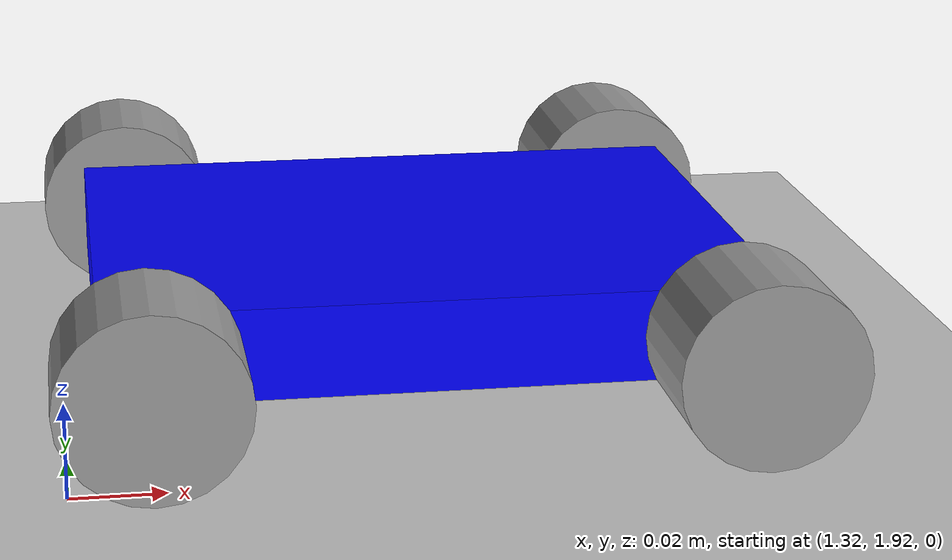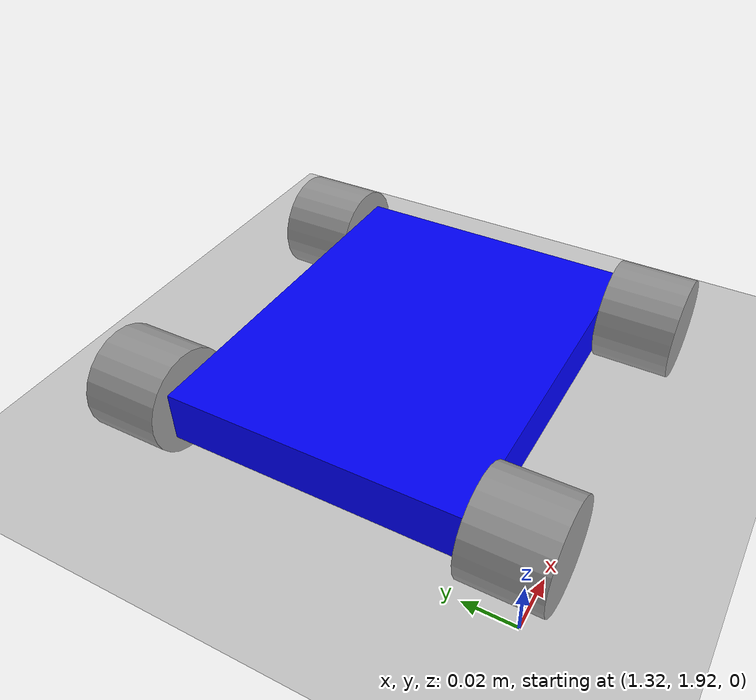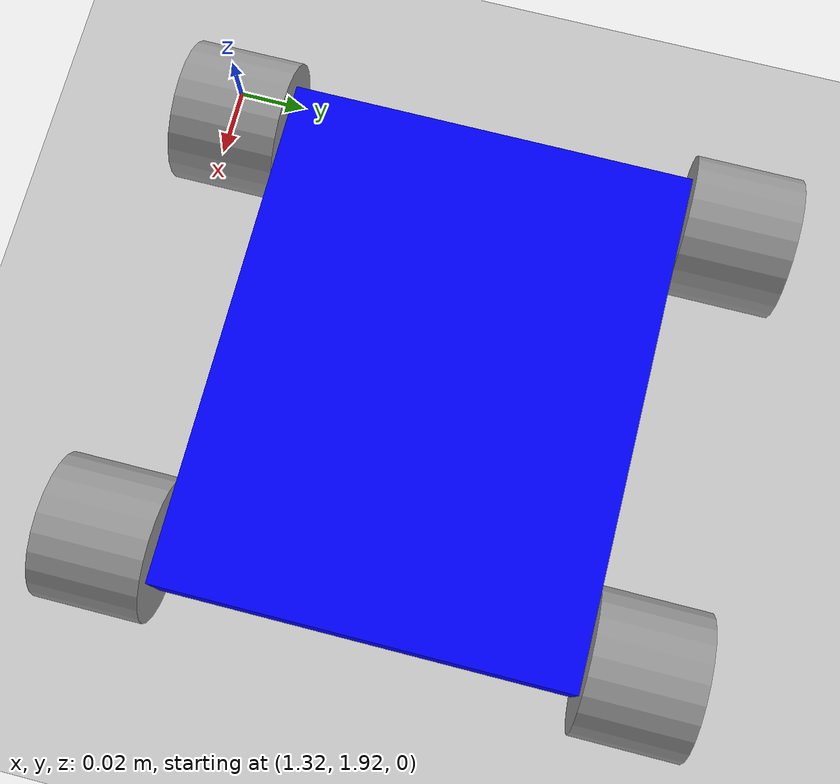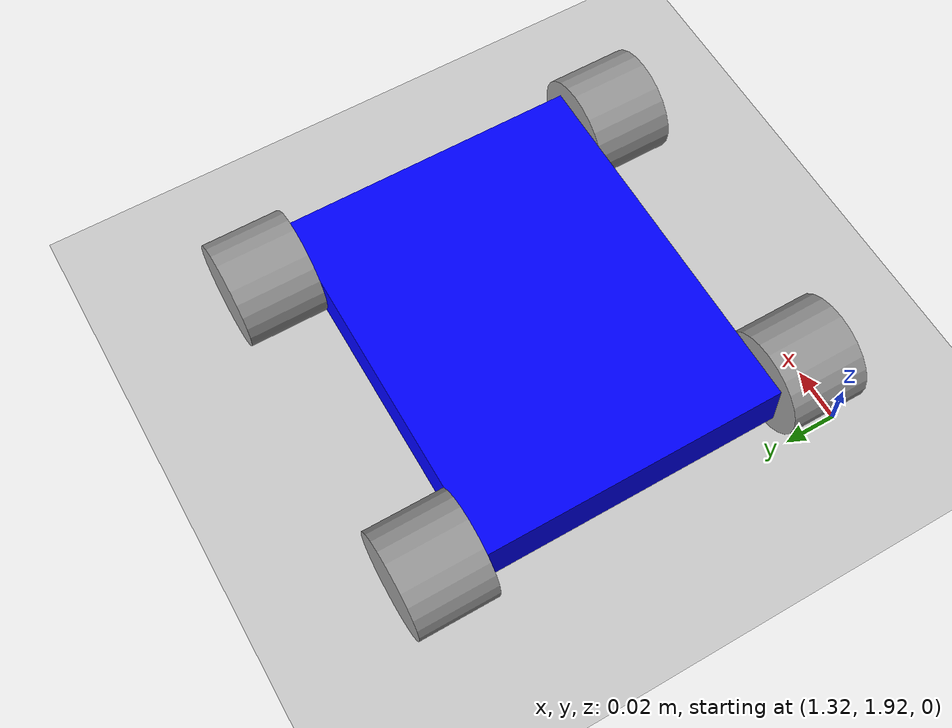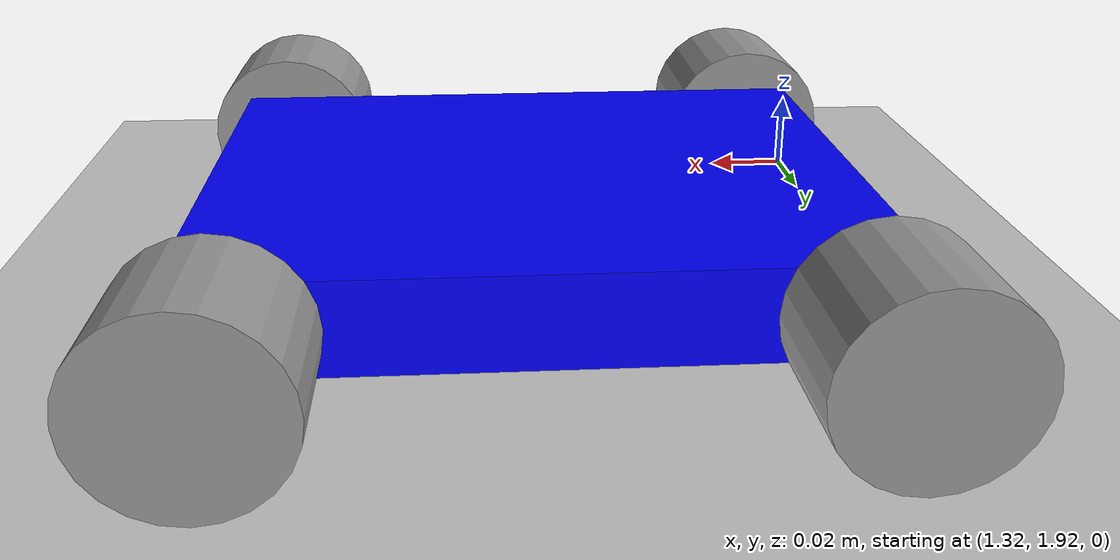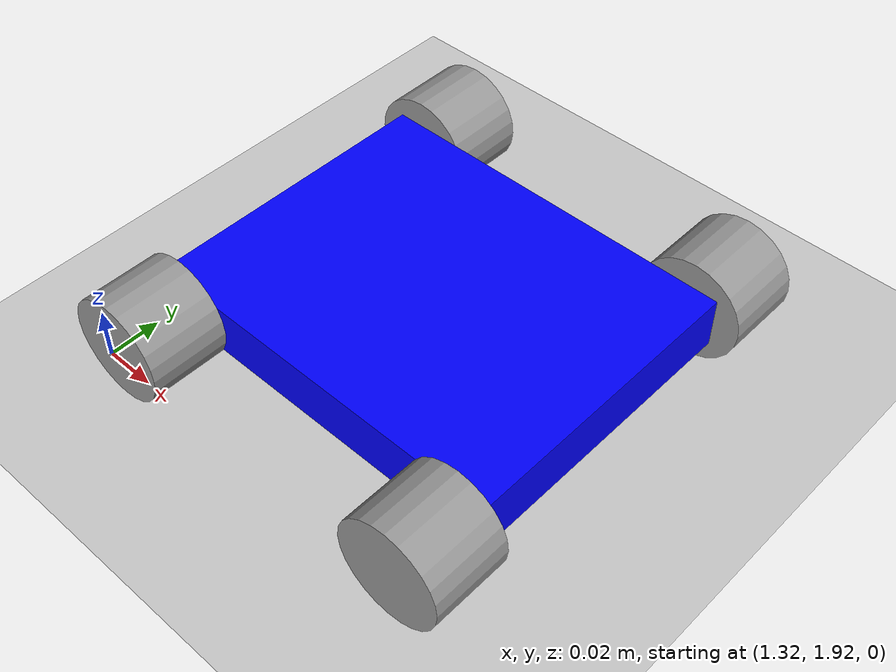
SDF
<sdf version="1.6">
 <world name="default">
  <model name="ground_plane">
   <static>1</static>
   <link name="link">
    <collision name="collision">
     <geometry><plane><normal>0 0 1</normal><size>100 100</size></plane></geometry>
     <surface><friction><ode><mu>100</mu><mu2>50</mu2></ode></friction></surface>
    </collision>
    <visual name="visual">
     <cast_shadows>0</cast_shadows>
     <geometry><plane><normal>0 0 1</normal><size>100 100</size></plane></geometry>
     <material>
      <script><uri>file://media/materials/scripts/gazebo.material</uri><name>Gazebo/Grey</name></script>
     </material>
    </visual>
   </link>
  </model>
  <model name="nanocrawler6">
   <link name="chassis">
    <inertial>
     <mass>1</mass>
     <inertia>
      <ixx>0.166667</ixx>
      <ixy>0</ixy>
      <ixz>0</ixz>
      <iyy>0.166667</iyy>
      <iyz>0</iyz>
      <izz>0.166667</izz>
     </inertia>
    </inertial>
    <visual name="visual">
     <geometry><box><size>0.145 0.115 0.02</size></box></geometry>
     <material>
      <lighting>1</lighting>
      <script><uri>file://media/materials/scripts/gazebo.material</uri><name>Gazebo/Grey</name></script>
      <shader type="pixel"><normal_map>__default__</normal_map></shader>
      <ambient>0 0 1 1</ambient>
      <diffuse>0.7 0.7 0.7 1</diffuse>
      <specular>0.01 0.01 0.01 1</specular>
      <emissive>0 0 0 1</emissive>
     </material>
    </visual>
    <collision name="collision">
     <geometry><box><size>0.145 0.115 0.02</size></box></geometry>
     <surface>
      <friction>
       <ode><mu>1</mu><mu2>1</mu2><fdir1>0 0 0</fdir1><slip1>0</slip1><slip2>0</slip2></ode>
       <torsional>
        <coefficient>1</coefficient>
        <patch_radius>0</patch_radius>
        <surface_radius>0</surface_radius>
        <use_patch_radius>1</use_patch_radius>
        <ode><slip>0</slip></ode>
       </torsional>
      </friction>
      <bounce><restitution_coefficient>0</restitution_coefficient><threshold>1e+06</threshold></bounce>
      <contact>
       <collide_without_contact>0</collide_without_contact>
       <collide_without_contact_bitmask>1</collide_without_contact_bitmask>
       <collide_bitmask>1</collide_bitmask>
       <ode>
        <soft_cfm>0</soft_cfm>
        <soft_erp>0.2</soft_erp>
        <kp>1e+13</kp>
        <kd>1</kd>
        <max_vel>0.01</max_vel>
        <min_depth>0</min_depth>
       </ode>
       <bullet>
        <split_impulse>1</split_impulse>
        <split_impulse_penetration_threshold>-0.01</split_impulse_penetration_threshold>
        <soft_cfm>0</soft_cfm>
        <soft_erp>0.2</soft_erp>
        <kp>1e+13</kp>
        <kd>1</kd>
       </bullet>
      </contact>
     </surface>
    </collision>
   </link>
   <link name="left_front_wheel">
    <pose>0.0625 0.0725 0 1.5708 -0 0</pose>
    <inertial>
     <mass>1</mass>
     <inertia><ixx>0.145833</ixx><ixy>0</ixy><ixz>0</ixz><iyy>0.145833</iyy><iyz>0</iyz><izz>0.125</izz></inertia>
    </inertial>
    <visual name="visual">
     <geometry><cylinder><radius>0.02</radius><length>0.03</length></cylinder></geometry>
     <material>
      <lighting>1</lighting>
      <script><uri>file://media/materials/scripts/gazebo.material</uri><name>Gazebo/Grey</name></script>
      <shader type="pixel"><normal_map>__default__</normal_map></shader>
      <ambient>0.1 0.1 0.1 1</ambient>
      <diffuse>0.7 0.7 0.7 1</diffuse>
      <specular>0.01 0.01 0.01 1</specular>
      <emissive>0 0 0 1</emissive>
     </material>
    </visual>
    <collision name="collision">
     <geometry><cylinder><radius>0.02</radius><length>0.03</length></cylinder></geometry>
     <surface>
      <friction>
       <ode><mu>1</mu><mu2>1</mu2><fdir1>0 0 0</fdir1><slip1>0</slip1><slip2>0</slip2></ode>
       <torsional>
        <coefficient>1</coefficient>
        <patch_radius>0</patch_radius>
        <surface_radius>0</surface_radius>
        <use_patch_radius>1</use_patch_radius>
        <ode><slip>0</slip></ode>
       </torsional>
      </friction>
      <bounce><restitution_coefficient>0</restitution_coefficient><threshold>1e+06</threshold></bounce>
      <contact>
       <collide_without_contact>0</collide_without_contact>
       <collide_without_contact_bitmask>1</collide_without_contact_bitmask>
       <collide_bitmask>1</collide_bitmask>
       <ode>
        <soft_cfm>0</soft_cfm>
        <soft_erp>0.2</soft_erp>
        <kp>1e+13</kp>
        <kd>1</kd>
        <max_vel>0.01</max_vel>
        <min_depth>0</min_depth>
       </ode>
       <bullet>
        <split_impulse>1</split_impulse>
        <split_impulse_penetration_threshold>-0.01</split_impulse_penetration_threshold>
        <soft_cfm>0</soft_cfm>
        <soft_erp>0.2</soft_erp>
        <kp>1e+13</kp>
        <kd>1</kd>
       </bullet>
      </contact>
     </surface>
    </collision>
   </link>
   <joint name="left_front_wheel_hinge" type="revolute">
    <child>left_front_wheel</child>
    <parent>chassis</parent>
    <axis>
     <xyz>0 0 1</xyz>
     <use_parent_model_frame>0</use_parent_model_frame>
     <limit><lower>-1e+16</lower><upper>1e+16</upper></limit>
     <dynamics><spring_reference>0</spring_reference><spring_stiffness>0</spring_stiffness></dynamics>
    </axis>
   </joint>
   <link name="right_front_wheel">
    <pose>0.0625 -0.0725 0 1.5708 -0 0</pose>
    <inertial>
     <mass>1</mass>
     <inertia><ixx>0.145833</ixx><ixy>0</ixy><ixz>0</ixz><iyy>0.145833</iyy><iyz>0</iyz><izz>0.125</izz></inertia>
    </inertial>
    <visual name="visual">
     <geometry><cylinder><radius>0.02</radius><length>0.03</length></cylinder></geometry>
     <material>
      <lighting>1</lighting>
      <script><uri>file://media/materials/scripts/gazebo.material</uri><name>Gazebo/Grey</name></script>
      <shader type="pixel"><normal_map>__default__</normal_map></shader>
      <ambient>0.1 0.1 0.1 1</ambient>
      <diffuse>0.7 0.7 0.7 1</diffuse>
      <specular>0.01 0.01 0.01 1</specular>
      <emissive>0 0 0 1</emissive>
     </material>
    </visual>
    <collision name="collision">
     <geometry><cylinder><radius>0.02</radius><length>0.03</length></cylinder></geometry>
     <surface>
      <friction>
       <ode><mu>1</mu><mu2>1</mu2><fdir1>0 0 0</fdir1><slip1>0</slip1><slip2>0</slip2></ode>
       <torsional>
        <coefficient>1</coefficient>
        <patch_radius>0</patch_radius>
        <surface_radius>0</surface_radius>
        <use_patch_radius>1</use_patch_radius>
        <ode><slip>0</slip></ode>
       </torsional>
      </friction>
      <bounce><restitution_coefficient>0</restitution_coefficient><threshold>1e+06</threshold></bounce>
      <contact>
       <collide_without_contact>0</collide_without_contact>
       <collide_without_contact_bitmask>1</collide_without_contact_bitmask>
       <collide_bitmask>1</collide_bitmask>
       <ode>
        <soft_cfm>0</soft_cfm>
        <soft_erp>0.2</soft_erp>
        <kp>1e+13</kp>
        <kd>1</kd>
        <max_vel>0.01</max_vel>
        <min_depth>0</min_depth>
       </ode>
       <bullet>
        <split_impulse>1</split_impulse>
        <split_impulse_penetration_threshold>-0.01</split_impulse_penetration_threshold>
        <soft_cfm>0</soft_cfm>
        <soft_erp>0.2</soft_erp>
        <kp>1e+13</kp>
        <kd>1</kd>
       </bullet>
      </contact>
     </surface>
    </collision>
   </link>
   <joint name="right_front_wheel_hinge" type="revolute">
    <child>right_front_wheel</child>
    <parent>chassis</parent>
    <axis>
     <xyz>0 0 1</xyz>
     <use_parent_model_frame>0</use_parent_model_frame>
     <limit><lower>-1e+16</lower><upper>1e+16</upper></limit>
     <dynamics><spring_reference>0</spring_reference><spring_stiffness>0</spring_stiffness></dynamics>
    </axis>
   </joint>
   <link name="left_rear_wheel">
    <pose>-0.0625 0.0725 0 1.5708 -0 0</pose>
    <inertial>
     <mass>1</mass>
     <inertia><ixx>0.145833</ixx><ixy>0</ixy><ixz>0</ixz><iyy>0.145833</iyy><iyz>0</iyz><izz>0.125</izz></inertia>
    </inertial>
    <visual name="visual">
     <geometry><cylinder><radius>0.02</radius><length>0.03</length></cylinder></geometry>
     <material>
      <lighting>1</lighting>
      <script><uri>file://media/materials/scripts/gazebo.material</uri><name>Gazebo/Grey</name></script>
      <shader type="pixel"><normal_map>__default__</normal_map></shader>
      <ambient>0.1 0.1 0.1 1</ambient>
      <diffuse>0.7 0.7 0.7 1</diffuse>
      <specular>0.01 0.01 0.01 1</specular>
      <emissive>0 0 0 1</emissive>
     </material>
    </visual>
    <collision name="collision">
     <geometry><cylinder><radius>0.02</radius><length>0.03</length></cylinder></geometry>
     <surface>
      <friction>
       <ode><mu>1</mu><mu2>1</mu2><fdir1>0 0 0</fdir1><slip1>0</slip1><slip2>0</slip2></ode>
       <torsional>
        <coefficient>1</coefficient>
        <patch_radius>0</patch_radius>
        <surface_radius>0</surface_radius>
        <use_patch_radius>1</use_patch_radius>
        <ode><slip>0</slip></ode>
       </torsional>
      </friction>
      <bounce><restitution_coefficient>0</restitution_coefficient><threshold>1e+06</threshold></bounce>
      <contact>
       <collide_without_contact>0</collide_without_contact>
       <collide_without_contact_bitmask>1</collide_without_contact_bitmask>
       <collide_bitmask>1</collide_bitmask>
       <ode>
        <soft_cfm>0</soft_cfm>
        <soft_erp>0.2</soft_erp>
        <kp>1e+13</kp>
        <kd>1</kd>
        <max_vel>0.01</max_vel>
        <min_depth>0</min_depth>
       </ode>
       <bullet>
        <split_impulse>1</split_impulse>
        <split_impulse_penetration_threshold>-0.01</split_impulse_penetration_threshold>
        <soft_cfm>0</soft_cfm>
        <soft_erp>0.2</soft_erp>
        <kp>1e+13</kp>
        <kd>1</kd>
       </bullet>
      </contact>
     </surface>
    </collision>
   </link>
   <joint name="left_rear_wheel_hinge" type="revolute">
    <child>left_rear_wheel</child>
    <parent>chassis</parent>
    <axis>
     <xyz>0 0 1</xyz>
     <use_parent_model_frame>0</use_parent_model_frame>
     <limit><lower>-1e+16</lower><upper>1e+16</upper></limit>
     <dynamics><spring_reference>0</spring_reference><spring_stiffness>0</spring_stiffness></dynamics>
    </axis>
   </joint>
   <link name="right_rear_wheel">
    <pose>-0.0625 -0.0725 0 1.5708 -0 0</pose>
    <inertial>
     <mass>1</mass>
     <inertia><ixx>0.145833</ixx><ixy>0</ixy><ixz>0</ixz><iyy>0.145833</iyy><iyz>0</iyz><izz>0.125</izz></inertia>
    </inertial>
    <visual name="visual">
     <geometry><cylinder><radius>0.02</radius><length>0.03</length></cylinder></geometry>
     <material>
      <lighting>1</lighting>
      <script><uri>file://media/materials/scripts/gazebo.material</uri><name>Gazebo/Grey</name></script>
      <shader type="pixel"><normal_map>__default__</normal_map></shader>
      <ambient>0.1 0.1 0.1 1</ambient>
      <diffuse>0.7 0.7 0.7 1</diffuse>
      <specular>0.01 0.01 0.01 1</specular>
      <emissive>0 0 0 1</emissive>
     </material>
    </visual>
    <collision name="collision">
     <geometry><cylinder><radius>0.02</radius><length>0.03</length></cylinder></geometry>
     <surface>
      <friction>
       <ode><mu>1</mu><mu2>1</mu2><fdir1>0 0 0</fdir1><slip1>0</slip1><slip2>0</slip2></ode>
       <torsional>
        <coefficient>1</coefficient>
        <patch_radius>0</patch_radius>
        <surface_radius>0</surface_radius>
        <use_patch_radius>1</use_patch_radius>
        <ode><slip>0</slip></ode>
       </torsional>
      </friction>
      <bounce><restitution_coefficient>0</restitution_coefficient><threshold>1e+06</threshold></bounce>
      <contact>
       <collide_without_contact>0</collide_without_contact>
       <collide_without_contact_bitmask>1</collide_without_contact_bitmask>
       <collide_bitmask>1</collide_bitmask>
       <ode>
        <soft_cfm>0</soft_cfm>
        <soft_erp>0.2</soft_erp>
        <kp>1e+13</kp>
        <kd>1</kd>
        <max_vel>0.01</max_vel>
        <min_depth>0</min_depth>
       </ode>
       <bullet>
        <split_impulse>1</split_impulse>
        <split_impulse_penetration_threshold>-0.01</split_impulse_penetration_threshold>
        <soft_cfm>0</soft_cfm>
        <soft_erp>0.2</soft_erp>
        <kp>1e+13</kp>
        <kd>1</kd>
       </bullet>
      </contact>
     </surface>
    </collision>
   </link>
   <joint name="right_rear_wheel_hinge" type="revolute">
    <child>right_rear_wheel</child>
    <parent>chassis</parent>
    <axis>
     <xyz>0 0 1</xyz>
     <use_parent_model_frame>0</use_parent_model_frame>
     <limit><lower>-1e+16</lower><upper>1e+16</upper></limit>
     <dynamics><spring_reference>0</spring_reference><spring_stiffness>0</spring_stiffness></dynamics>
    </axis>
   </joint>
   <static>0</static>
   <pose>1.39974 2.0001 0.02 -1e-06 2e-06 -0.000482</pose>
  </model>
 </world>
</sdf>
